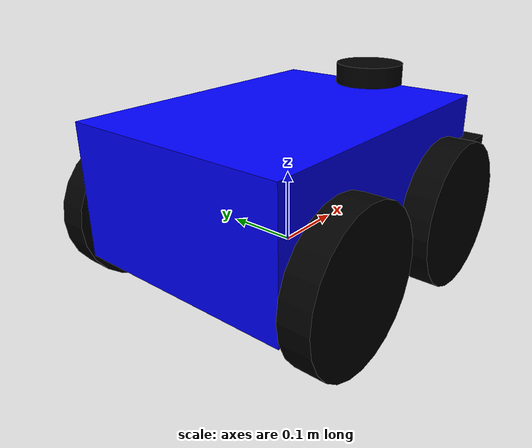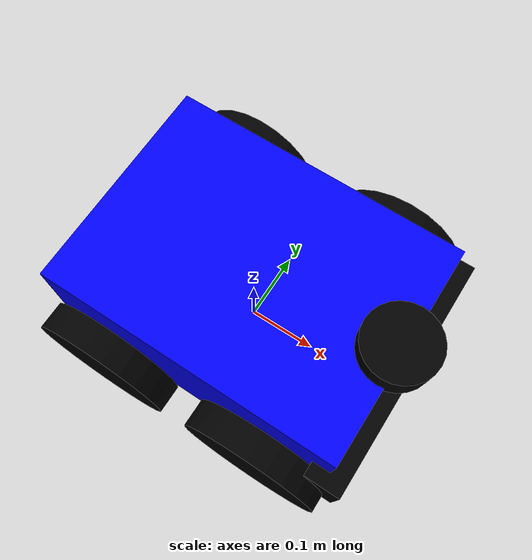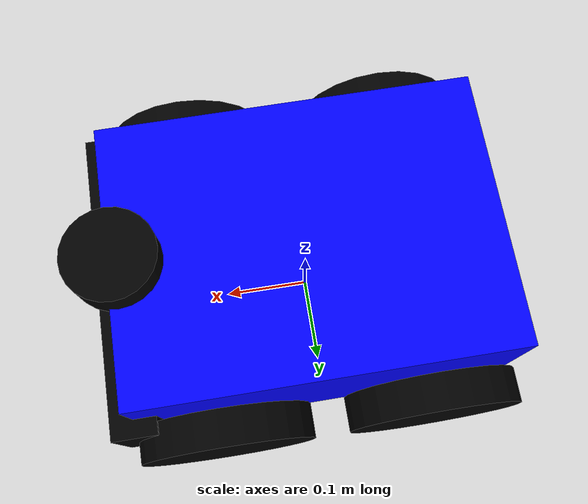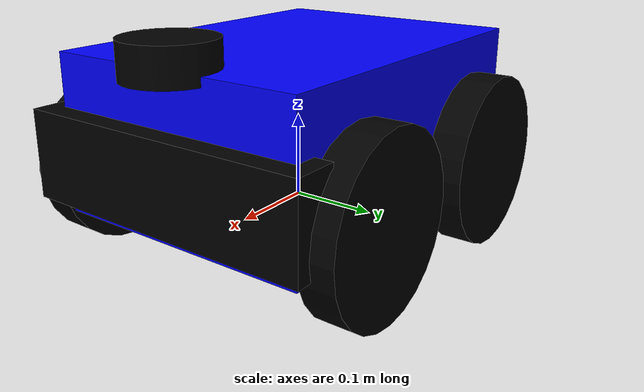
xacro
<?xml version="1.0"?>
<robot name="differential_robot" xmlns:xacro="http://www.ros.org/wiki/xacro">

  <xacro:include filename="$(find ex0601)/urdf/ex0601.gazebo.xacro" />

  <xacro:property name="base_width" value="0.31"/>
  <xacro:property name="base_length" value="0.42"/>
  <xacro:property name="base_height" value="0.18"/>
  <xacro:property name="wheel_radius" value="0.10"/>
  <xacro:property name="wheel_width" value="0.04"/>

  <material name="blue"><color rgba="0 0 1 1"/></material>
  <material name="black"><color rgba="0 0 0 1"/></material>
  <material name="silver"><color rgba="0.75 0.75 0.75 1"/></material>

  <link name="base_footprint"/>
  <joint name="base_joint" type="fixed">
    <parent link="base_footprint"/>
    <child link="base_link"/>
    <origin xyz="0 0 0.1" rpy="0 0 0"/>
  </joint>

  <link name="base_link">
    <visual>
      <geometry><box size="${base_length} ${base_width} ${base_height}"/></geometry>
      <material name="blue"/>
    </visual>
    <collision>
      <geometry><box size="${base_length} ${base_width} ${base_height}"/></geometry>
    </collision>
    <inertial>
      <mass value="5.0"/>
      <inertia ixx="0.05" ixy="0" ixz="0" iyy="0.08" iyz="0" izz="0.1"/>
    </inertial>
  </link>

  <!-- Лидар детектит кабину как препятствие, поэтому придётся от неё избавиться -->

  <link name="bumper">
    <visual>
      <geometry><box size="0.05 0.35 0.1"/></geometry>
      <material name="black"/>
    </visual>
  </link>
  <joint name="bumper_joint" type="fixed">
    <parent link="base_link"/>
    <child link="bumper"/>
    <origin xyz="0.21 0 -0.02" rpy="0 0 0"/>
  </joint>

  <xacro:macro name="wheel" params="prefix x_reflect y_reflect">
    <link name="drivewhl_${prefix}_link">
      <visual>
        <origin xyz="0 0 0" rpy="${pi/2} 0 0"/>
        <geometry><cylinder radius="${wheel_radius}" length="${wheel_width}"/></geometry>
        <material name="black"/>
      </visual>
      <collision>
        <origin xyz="0 0 0" rpy="${pi/2} 0 0"/>
        <geometry><cylinder radius="${wheel_radius}" length="${wheel_width}"/></geometry>
      </collision>
      <inertial>
        <mass value="0.5"/>
        <inertia ixx="0.001" ixy="0" ixz="0" iyy="0.001" iyz="0" izz="0.001"/>
      </inertial>
    </link>
    <joint name="drivewhl_${prefix}_joint" type="continuous">
      <parent link="base_link"/>
      <child link="drivewhl_${prefix}_link"/>
      <origin xyz="${x_reflect*0.12} ${y_reflect*0.18} -0.05" rpy="0 0 0"/>
      <axis xyz="0 1 0"/>
    </joint>
  </xacro:macro>

  <xacro:wheel prefix="fl" x_reflect="1" y_reflect="1" />
  <xacro:wheel prefix="fr" x_reflect="1" y_reflect="-1" />
  <xacro:wheel prefix="rl" x_reflect="-1" y_reflect="1" />
  <xacro:wheel prefix="rr" x_reflect="-1" y_reflect="-1" />

  <link name="lidar">
    <visual>
      <origin xyz="0 0 0" rpy="0 0 0"/>
      <geometry>
        <cylinder radius="0.05" length="0.04"/>
      </geometry>
      <material name="black"/>
    </visual>
    <inertial>
      <mass value="0.1"/>
      <inertia ixx="0.0001" ixy="0" ixz="0" iyy="0.0001" iyz="0" izz="0.0001"/>
    </inertial>
  </link>

  <joint name="lidar_joint" type="fixed">
    <parent link="base_link"/>
    <child link="lidar"/>
    <origin xyz="0.2 0 0.1" rpy="0 0 0"/>
  </joint>

  <link name="imu_link">
    <visual>
      <geometry>
        <box size="0.05 0.05 0.02"/>
      </geometry>
      <material name="black"/>
    </visual>
    <inertial>
      <mass value="0.01"/>
      <inertia ixx="1e-5" ixy="0" ixz="0" iyy="1e-5" iyz="0" izz="1e-5"/>
    </inertial>
  </link>

  <joint name="imu_joint" type="fixed">
    <parent link="base_link"/>
    <child link="imu_link"/>
    <origin xyz="0 0 0.05" rpy="0 0 0"/>
  </joint>

</robot>
